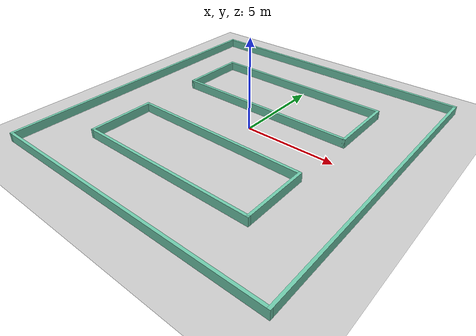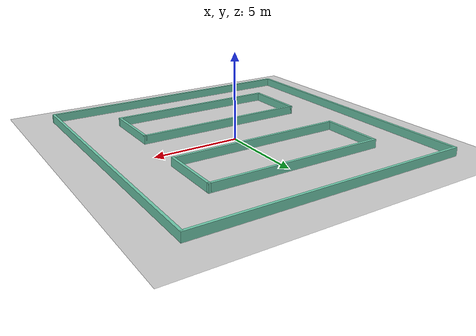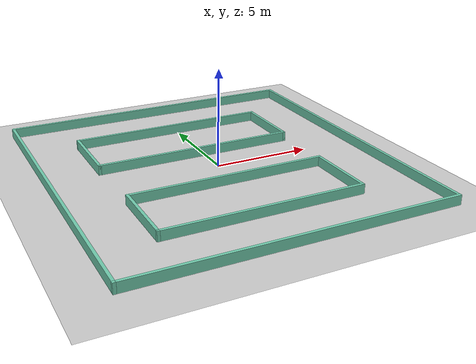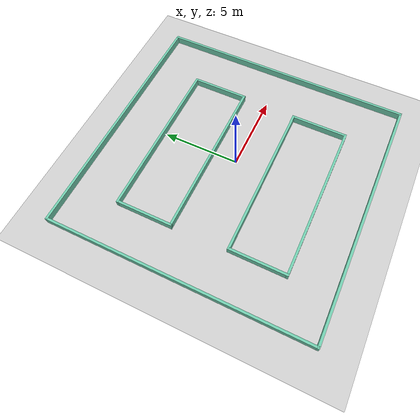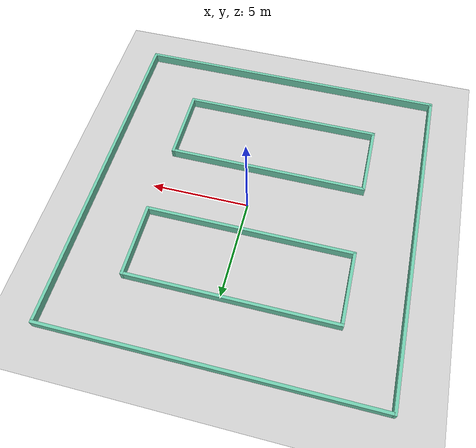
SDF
<sdf version="1.7">
 <world name="default">
  <light name="sun" type="directional">
   <pose>0 0 10 0 -0 0</pose>
   <diffuse>0.8 0.8 0.8 1</diffuse>
   <specular>0.2 0.2 0.2 1</specular>
   <attenuation>
    <range>1000</range>
    <constant>0.9</constant>
    <linear>0.01</linear>
    <quadratic>0.001</quadratic>
   </attenuation>
   <direction>-0.5 0.1 -0.9</direction>
   <spot><inner_angle>0</inner_angle><outer_angle>0</outer_angle><falloff>0</falloff></spot>
  </light>
  <model name="ground_plane">
   <static>1</static>
   <link name="link">
    <collision name="collision">
     <geometry><plane><normal>0 0 1</normal><size>100 100</size></plane></geometry>
     <surface><friction><ode><mu>100</mu><mu2>50</mu2></ode></friction></surface>
    </collision>
    <visual name="visual">
     <cast_shadows>0</cast_shadows>
     <geometry><plane><normal>0 0 1</normal><size>100 100</size></plane></geometry>
     <material>
      <script><uri>file://media/materials/scripts/gazebo.material</uri><name>Gazebo/Grey</name></script>
     </material>
    </visual>
   </link>
  </model>
  <model name="walls">
   <pose>-0.314414 -0.093904 -1 0 -0 0</pose>
   <link name="Wall_10">
    <collision name="Wall_10_Collision">
     <geometry><box><size>10.25 0.15 0.5</size></box></geometry>
     <pose>0 0 1.25 0 -0 0</pose>
    </collision>
    <visual name="Wall_10_Visual">
     <pose>0 0 1.25 0 -0 0</pose>
     <geometry><box><size>10.25 0.15 0.5</size></box></geometry>
     <material>
      <script><uri>file://media/materials/scripts/gazebo.material</uri><name>Gazebo/Grey</name></script>
      <ambient>0.435294 0.796078 0.67451 1</ambient>
     </material>
     <meta><layer>0</layer></meta>
    </visual>
    <pose>-0.178495 -5.61612 0 0 -0 3.14159</pose>
   </link>
   <link name="Wall_11">
    <collision name="Wall_11_Collision">
     <geometry><box><size>3.75 0.15 0.5</size></box></geometry>
     <pose>0 0 1.25 0 -0 0</pose>
    </collision>
    <visual name="Wall_11_Visual">
     <pose>0 0 1.25 0 -0 0</pose>
     <geometry><box><size>3.75 0.15 0.5</size></box></geometry>
     <material>
      <script><uri>file://media/materials/scripts/gazebo.material</uri><name>Gazebo/Grey</name></script>
      <ambient>0.435294 0.796078 0.67451 1</ambient>
     </material>
     <meta><layer>0</layer></meta>
    </visual>
    <pose>-5.22849 -3.81612 0 0 -0 1.5708</pose>
   </link>
   <link name="Wall_14">
    <collision name="Wall_14_Collision">
     <geometry><box><size>10.5 0.15 0.5</size></box></geometry>
     <pose>0 0 1.25 0 -0 0</pose>
    </collision>
    <visual name="Wall_14_Visual">
     <pose>0 0 1.25 0 -0 0</pose>
     <geometry><box><size>10.5 0.15 0.5</size></box></geometry>
     <material>
      <script><uri>file://media/materials/scripts/gazebo.material</uri><name>Gazebo/Grey</name></script>
      <ambient>0.435294 0.796078 0.67451 1</ambient>
     </material>
     <meta><layer>0</layer></meta>
    </visual>
    <pose>-0.169148 1.66165 0 0 -0 0</pose>
   </link>
   <link name="Wall_15">
    <collision name="Wall_15_Collision">
     <geometry><box><size>3.75 0.15 0.5</size></box></geometry>
     <pose>0 0 1.25 0 -0 0</pose>
    </collision>
    <visual name="Wall_15_Visual">
     <pose>0 0 1.25 0 -0 0</pose>
     <geometry><box><size>3.75 0.15 0.5</size></box></geometry>
     <material>
      <script><uri>file://media/materials/scripts/gazebo.material</uri><name>Gazebo/Grey</name></script>
      <ambient>0.435294 0.796078 0.67451 1</ambient>
     </material>
     <meta><layer>0</layer></meta>
    </visual>
    <pose>5.00585 3.46165 0 0 -0 1.5708</pose>
   </link>
   <link name="Wall_16">
    <collision name="Wall_16_Collision">
     <geometry><box><size>10.5 0.15 0.5</size></box></geometry>
     <pose>0 0 1.25 0 -0 0</pose>
    </collision>
    <visual name="Wall_16_Visual">
     <pose>0 0 1.25 0 -0 0</pose>
     <geometry><box><size>10.5 0.15 0.5</size></box></geometry>
     <material>
      <script><uri>file://media/materials/scripts/gazebo.material</uri><name>Gazebo/Grey</name></script>
      <ambient>0.435294 0.796078 0.67451 1</ambient>
     </material>
     <meta><layer>0</layer></meta>
    </visual>
    <pose>-0.169148 5.26165 0 0 -0 3.14159</pose>
   </link>
   <link name="Wall_17">
    <collision name="Wall_17_Collision">
     <geometry><box><size>3.75 0.15 0.5</size></box></geometry>
     <pose>0 0 1.25 0 -0 0</pose>
    </collision>
    <visual name="Wall_17_Visual">
     <pose>0 0 1.25 0 -0 0</pose>
     <geometry><box><size>3.75 0.15 0.5</size></box></geometry>
     <material>
      <script><uri>file://media/materials/scripts/gazebo.material</uri><name>Gazebo/Grey</name></script>
      <ambient>0.435294 0.796078 0.67451 1</ambient>
     </material>
     <meta><layer>0</layer></meta>
    </visual>
    <pose>-5.34415 3.46165 0 0 -0 -1.5708</pose>
   </link>
   <link name="Wall_21">
    <collision name="Wall_21_Collision">
     <geometry><box><size>16.25 0.15 0.5</size></box></geometry>
     <pose>0 0 1.25 0 -0 0</pose>
    </collision>
    <visual name="Wall_21_Visual">
     <pose>0 0 1.25 0 -0 0</pose>
     <geometry><box><size>16.25 0.15 0.5</size></box></geometry>
     <material>
      <script><uri>file://media/materials/scripts/gazebo.material</uri><name>Gazebo/Grey</name></script>
      <ambient>0.435294 0.796078 0.67451 1</ambient>
     </material>
     <meta><layer>0</layer></meta>
    </visual>
    <pose>-0 8.425 0 0 -0 0</pose>
   </link>
   <link name="Wall_22">
    <collision name="Wall_22_Collision">
     <geometry><box><size>17 0.15 0.5</size></box></geometry>
     <pose>0 0 1.25 0 -0 0</pose>
    </collision>
    <visual name="Wall_22_Visual">
     <pose>0 0 1.25 0 -0 0</pose>
     <geometry><box><size>17 0.15 0.5</size></box></geometry>
     <material>
      <script><uri>file://media/materials/scripts/gazebo.material</uri><name>Gazebo/Grey</name></script>
      <ambient>0.435294 0.796078 0.67451 1</ambient>
     </material>
     <meta><layer>0</layer></meta>
    </visual>
    <pose>8.05 -0 0 0 -0 -1.5708</pose>
   </link>
   <link name="Wall_23">
    <collision name="Wall_23_Collision">
     <geometry><box><size>16.25 0.15 0.5</size></box></geometry>
     <pose>0 0 1.25 0 -0 0</pose>
    </collision>
    <visual name="Wall_23_Visual">
     <pose>0 0 1.25 0 -0 0</pose>
     <geometry><box><size>16.25 0.15 0.5</size></box></geometry>
     <material>
      <script><uri>file://media/materials/scripts/gazebo.material</uri><name>Gazebo/Grey</name></script>
      <ambient>0.435294 0.796078 0.67451 1</ambient>
     </material>
     <meta><layer>0</layer></meta>
    </visual>
    <pose>-0 -8.425 0 0 -0 3.14159</pose>
   </link>
   <link name="Wall_24">
    <collision name="Wall_24_Collision">
     <geometry><box><size>17 0.15 0.5</size></box></geometry>
     <pose>0 0 1.25 0 -0 0</pose>
    </collision>
    <visual name="Wall_24_Visual">
     <pose>0 0 1.25 0 -0 0</pose>
     <geometry><box><size>17 0.15 0.5</size></box></geometry>
     <material>
      <script><uri>file://media/materials/scripts/gazebo.material</uri><name>Gazebo/Grey</name></script>
      <ambient>0.435294 0.796078 0.67451 1</ambient>
     </material>
     <meta><layer>0</layer></meta>
    </visual>
    <pose>-8.05 -0 0 0 -0 1.5708</pose>
   </link>
   <link name="Wall_8">
    <collision name="Wall_8_Collision">
     <geometry><box><size>10.25 0.15 0.5</size></box></geometry>
     <pose>0 0 1.25 0 -0 0</pose>
    </collision>
    <visual name="Wall_8_Visual">
     <pose>0 0 1.25 0 -0 0</pose>
     <geometry><box><size>10.25 0.15 0.5</size></box></geometry>
     <material>
      <script><uri>file://media/materials/scripts/gazebo.material</uri><name>Gazebo/Grey</name></script>
      <ambient>0.435294 0.796078 0.67451 1</ambient>
     </material>
     <meta><layer>0</layer></meta>
    </visual>
    <pose>-0.178495 -2.01612 0 0 -0 0</pose>
   </link>
   <link name="Wall_9">
    <collision name="Wall_9_Collision">
     <geometry><box><size>3.75 0.15 0.5</size></box></geometry>
     <pose>0 0 1.25 0 -0 0</pose>
    </collision>
    <visual name="Wall_9_Visual">
     <pose>0 0 1.25 0 -0 0</pose>
     <geometry><box><size>3.75 0.15 0.5</size></box></geometry>
     <material>
      <script><uri>file://media/materials/scripts/gazebo.material</uri><name>Gazebo/Grey</name></script>
      <ambient>0.435294 0.796078 0.67451 1</ambient>
     </material>
     <meta><layer>0</layer></meta>
    </visual>
    <pose>4.8715 -3.81612 0 0 -0 -1.5708</pose>
   </link>
   <static>1</static>
  </model>
  <gravity>0 0 -9.8</gravity>
  <magnetic_field>6e-06 2.3e-05 -4.2e-05</magnetic_field>
  <atmosphere type="adiabatic"/>
  <physics type="ode">
   <max_step_size>0.001</max_step_size>
   <real_time_factor>1</real_time_factor>
   <real_time_update_rate>1000</real_time_update_rate>
  </physics>
  <scene><ambient>0.4 0.4 0.4 1</ambient><background>0.7 0.7 0.7 1</background><shadows>1</shadows></scene>
 </world>
</sdf>
